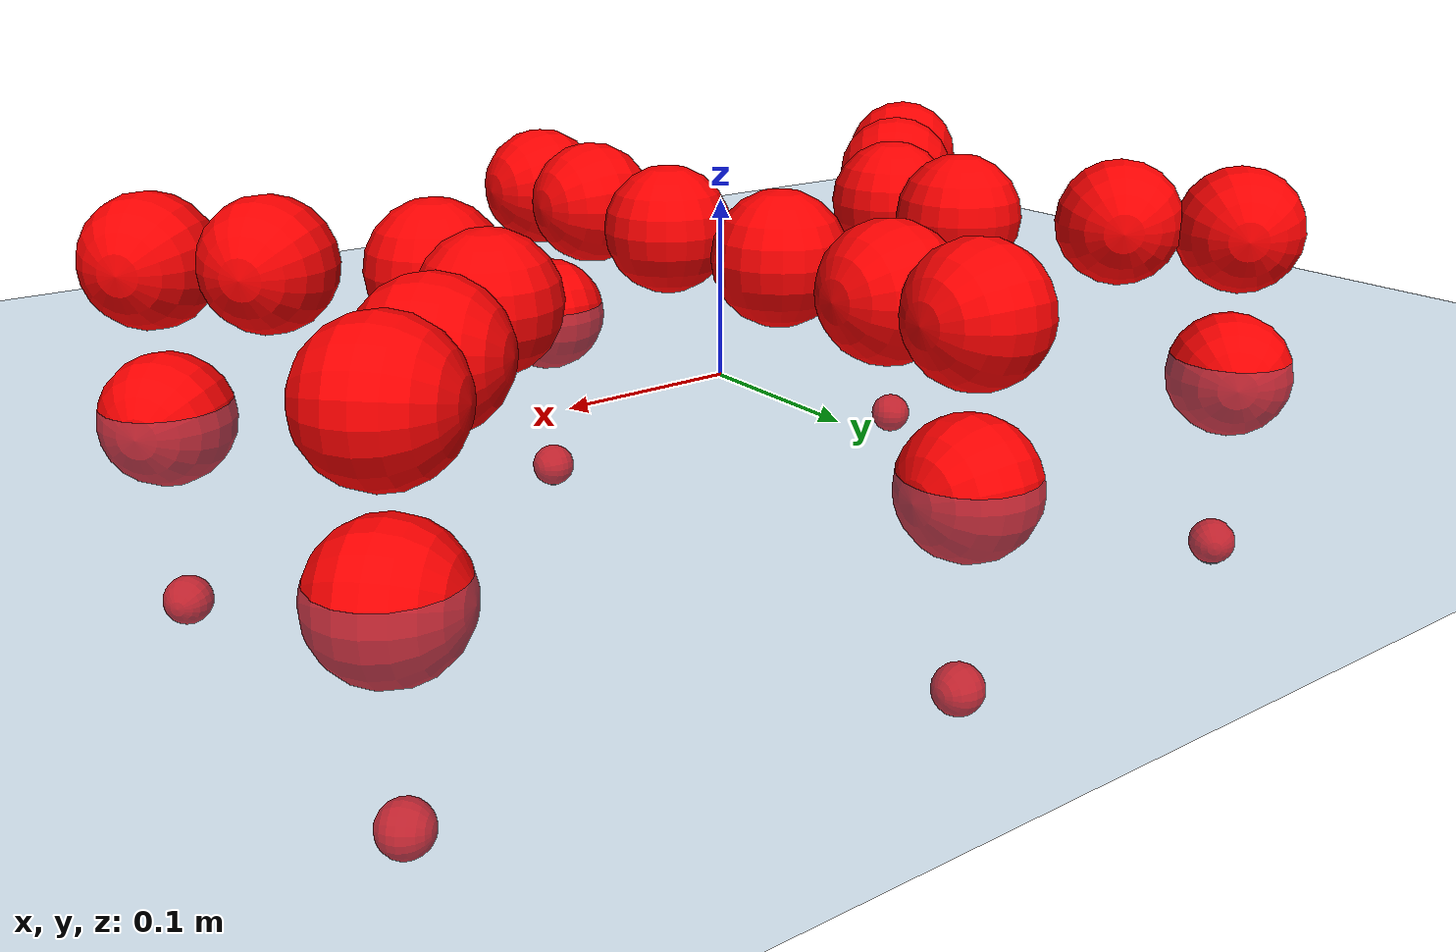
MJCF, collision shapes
<mujoco model="Golem">
  <compiler angle="radian" assetdir="assets" balanceinertia="true" inertiafromgeom="false"/>

  <option timestep="0.005" density="1.2" viscosity="2e-05"/>

  <size nkey="1"/>

  <visual>
    <quality shadowsize="8192"/>
    <map shadowclip="0.5"/>
  </visual>

  <default>
    <default class="/">
      <joint armature="0.01" damping="0.01" frictionloss="0.01"/>
      <geom contype="0" conaffinity="0" group="1" solref="-1000 -80"/>
      <site size="0.01 0.005 0.005" group="5"/>
      <general forcelimited="true" biastype="affine" gainprm="25" biasprm="0 -25 -0.5"/>
      <default class="visual">
        <geom type="mesh" group="2"/>
      </default>
      <default class="collision">
        <geom group="3"/>
      </default>
      <default class="foot">
        <geom size="0.01 0 0" condim="6" group="4" priority="1" solimp="0.015 1 0.01"/>
      </default>
      <default class="reward_collision_sphere">
        <geom group="5" rgba="1 0 0 1"/>
      </default>
    </default>
  </default>

  <asset>
    <texture type="skybox" colorspace="auto" name="//unnamed_texture_0" builtin="gradient" rgb1="0.95 0.95 0.95" rgb2="0.95 0.95 0.95" width="100" height="600"/>
    <texture type="2d" colorspace="auto" name="texplane" builtin="checker" rgb1="0.345 0.575 0.748" rgb2="0.345 0.575 0.748" markrgb="1 1 1" width="512" height="512"/>
    <material name="MatPlane" class="/" texture="texplane" texuniform="true" texrepeat="2 2" specular="0.9"/>
    <mesh name="body" class="/" file="body.stl" scale="0.001 0.001 0.001"/>
    <mesh name="coxa" class="/" file="coxa.stl" scale="0.001 0.001 0.001"/>
    <mesh name="femur" class="/" file="femur.stl" scale="0.001 0.001 0.001"/>
    <mesh name="tibia" class="/" file="tibia.stl" scale="0.001 0.001 0.001"/>
    <mesh name="tarsus" class="/" file="tarsus.stl" scale="0.001 0.001 0.001"/>
  </asset>

  <worldbody>
    <geom name="floor" class="/" size="100 100 0.125" type="plane" group="0" material="MatPlane"/>
    <light name="toplight_shadow" class="/" pos="0 0 5" dir="0.0990148 0.0990148 -0.990148" type="directional" ambient="0.04 0.04 0.04" diffuse="0.55 0.55 0.55" specular="0.12 0.12 0.12"/>
    <light name="toplight_fill" class="/" pos="0 0 5" dir="0.0990148 0.0990148 -0.990148" type="directional" castshadow="false" ambient="0.04 0.04 0.04" diffuse="0.3 0.3 0.3" specular="0.08 0.08 0.08"/>
    <body name="trunk" pos="0.00076841 -0.000904524 0.00105778" quat="1 -0.000330835 0.000180451 -0.000369674">
      <inertial pos="0.00247406 -0.00143529 -0.000926349" quat="0.999995 -0.0026703 0.00148248 0.00081342" mass="2.97235" diaginertia="0.0104105 0.000766452 0.0218588"/>
      <joint name="//unnamed_joint_0" type="free"/>
      <geom name="//unnamed_geom_1" class="/" pos="0 0 0.0740529" quat="1 0 0 0" type="mesh" rgba="0.9 0.9 0.9 1" mesh="body"/>
      <site name="imu" class="/" pos="0.130139 -0.00348167 0.102457" size="0.00915763"/>
      <camera name="track" class="/" pos="0 -1.1904 0" quat="0.707107 0.707107 0 0" mode="trackcom"/>
      <camera name="ego_camera" class="/" pos="0.129352 0 0.115708" quat="-0.5 -0.5 0.5 0.5"/>
      <body name="coxa_RR" pos="-0.175875 -0.0503371 0.075012" quat="0.382577 0.000117461 0.000162745 -0.923924">
        <inertial pos="0.000281563 -0.000683244 0.000941737" quat="1 -0.000313809 0.000492215 -0.000795895" mass="0.1524" diaginertia="0.00967027 0.000735277 0.0204754"/>
        <joint name="coxa_joint_RR" class="/" pos="0 0 0" axis="0.00924953 -0.00261454 -0.999954" range="-3.16694 3.14191" armature="0.00885689" damping="0" frictionloss="0.00914356"/>
        <geom name="//unnamed_geom_2" class="/" type="mesh" rgba="0.2 0.2 0.2 1" mesh="coxa"/>
        <geom name="//unnamed_geom_3" class="reward_collision_sphere" size="0.0366305" pos="-0.0298504 0 0"/>
        <body name="femur_RR" pos="0.0617861 0.0013406 0.00150358" quat="0.499844 -0.500253 0.49978 0.500123">
          <inertial pos="-0.00110859 -0.000312057 -0.000876327" quat="0.999997 -0.000522255 -0.000584776 0.00229727" mass="0.150674" diaginertia="0.00976597 0.000727006 0.0202377"/>
          <joint name="femur_joint_RR" class="/" pos="0 0 0" axis="0.0112343 -0.00831106 -0.999902" range="-3.13758 3.1236" armature="0.00916643" damping="0.00132861" frictionloss="0.00915224"/>
          <geom name="//unnamed_geom_4" class="/" type="mesh" rgba="0.9 0.9 0.9 1" mesh="femur"/>
          <geom name="//unnamed_geom_5" class="reward_collision_sphere" size="0.0366305"/>
          <body name="tibia_RR" pos="-0.00144076 -0.0644626 -0.00166367" quat="-0.000102223 1 -8.39221e-05 4.37851e-05">
            <inertial pos="-0.000321688 -0.00252262 0.000228319" quat="0.99991 -0.00326339 -0.0100406 -0.00822687" mass="0.153626" diaginertia="0.00998345 0.000743103 0.0203271"/>
            <joint name="tibia_joint_RR" class="/" pos="0 0 0" axis="-0.00878981 0.00341392 0.999956" range="-3.10955 3.15981" armature="0.00907266" damping="0.00835729" frictionloss="0.00937284"/>
            <geom name="//unnamed_geom_6" class="/" type="mesh" rgba="0.2 0.2 0.2 1" mesh="tibia"/>
            <geom name="//unnamed_geom_7" class="reward_collision_sphere" size="0.0366305"/>
            <body name="tarsus_RR" pos="0.0864791 -0.00271003 -0.00166575" quat="1 0.000199051 0.000156188 0.000278083">
              <inertial pos="0.0597966 0.000591988 -0.00161816" quat="0.503853 0.492823 0.508474 0.494684" mass="0.158983" diaginertia="0.00995534 0.000760508 0.0202833"/>
              <joint name="tarsus_joint_RR" class="/" pos="0 0 0" axis="-0.00208381 -0.000474167 0.999998" range="-3.16892 3.155" armature="0.0095717" damping="0" frictionloss="0.0101403"/>
              <geom name="//unnamed_geom_8" class="/" type="mesh" rgba="0.9 0.9 0.9 1" mesh="tarsus"/>
              <geom name="foot_1" class="foot" size="0.00927679" pos="0.111441 0 0" quat="0 -0.707107 0 0.707107"/>
              <geom name="//unnamed_geom_10" class="reward_collision_sphere" size="0.0366305"/>
              <geom name="//unnamed_geom_11" class="reward_collision_sphere" size="0.0137364" pos="0.106964 0 0"/>
              <site name="foot_1" class="foot" pos="0.111441 0 0" quat="0 -0.707107 0 0.707107" size="0.00915763"/>
            </body>
          </body>
        </body>
      </body>
      <body name="coxa_RM" pos="-0.0012202 -0.0806962 0.073573" quat="0.706779 0.000342341 0.000986146 -0.707434">
        <inertial pos="0.00196627 0.000369777 -0.0019723" quat="1 -0.000141384 0.000570083 0.000230286" mass="0.155075" diaginertia="0.0097522 0.000766242 0.020592"/>
        <joint name="coxa_joint_RM" class="/" pos="0 0 0" axis="0.00342813 -0.00157284 -0.999993" range="-3.13367 3.14312" armature="0.010044" damping="0.0190837" frictionloss="0.00890806"/>
        <geom name="//unnamed_geom_12" class="/" type="mesh" rgba="0.2 0.2 0.2 1" mesh="coxa"/>
        <geom name="//unnamed_geom_13" class="reward_collision_sphere" size="0.0366305" pos="-0.0298504 0 0"/>
        <body name="femur_RM" pos="0.056255 -0.00301425 0.00142338" quat="0.500228 -0.500403 0.499797 0.499571">
          <inertial pos="0.00261408 -0.00139033 -6.81296e-05" quat="0.999994 0.00314301 -0.0007064 -0.00137436" mass="0.148566" diaginertia="0.00913009 0.000720701 0.0193912"/>
          <joint name="femur_joint_RM" class="/" pos="0 0 0" axis="0.00143827 -0.00813497 -0.999966" range="-3.13357 3.08637" armature="0.00871398" damping="0.0184661" frictionloss="0.00885238"/>
          <geom name="//unnamed_geom_14" class="/" type="mesh" rgba="0.9 0.9 0.9 1" mesh="femur"/>
          <geom name="//unnamed_geom_15" class="reward_collision_sphere" size="0.0366305"/>
          <body name="tibia_RM" pos="-0.000452753 -0.0616219 -0.000969259" quat="-0.00037698 1 -0.000362929 -0.00016947">
            <inertial pos="-0.00120752 0.00281444 0.000212371" quat="0.999986 -0.00252347 -0.00238114 -0.00388897" mass="0.150003" diaginertia="0.00965987 0.00073624 0.0203812"/>
            <joint name="tibia_joint_RM" class="/" pos="0 0 0" axis="-0.000781298 -0.00290442 0.999995" range="-3.1284 3.16459" armature="0.00956507" damping="0.0217359" frictionloss="0.00923514"/>
            <geom name="//unnamed_geom_16" class="/" type="mesh" rgba="0.2 0.2 0.2 1" mesh="tibia"/>
            <geom name="//unnamed_geom_17" class="reward_collision_sphere" size="0.0366305"/>
            <body name="tarsus_RM" pos="0.0848126 -0.00147189 0.000292686" quat="1 8.27724e-06 7.0723e-05 -4.171e-05">
              <inertial pos="0.062159 -4.67768e-05 -0.000667516" quat="0.49764 0.500571 0.501257 0.500524" mass="0.15842" diaginertia="0.00974147 0.00074537 0.0214463"/>
              <joint name="tarsus_joint_RM" class="/" pos="0 0 0" axis="-0.00503786 0.00337622 0.999982" range="-3.18058 3.09217" armature="0.00931698" damping="0.00651803" frictionloss="0.00821474"/>
              <geom name="//unnamed_geom_18" class="/" type="mesh" rgba="0.9 0.9 0.9 1" mesh="tarsus"/>
              <geom name="foot_2" class="foot" size="0.00971461" pos="0.111441 0 0" quat="0 -0.707107 0 0.707107"/>
              <geom name="//unnamed_geom_20" class="reward_collision_sphere" size="0.0366305"/>
              <geom name="//unnamed_geom_21" class="reward_collision_sphere" size="0.0137364" pos="0.106964 0 0"/>
              <site name="foot_2" class="foot" pos="0.111441 0 0" quat="0 -0.707107 0 0.707107" size="0.00915763"/>
            </body>
          </body>
        </body>
      </body>
      <body name="coxa_RF" pos="0.17733 -0.0521477 0.0770423" quat="0.923906 6.72417e-05 6.50781e-05 -0.382619">
        <inertial pos="0.00124171 -0.00268714 0.00224249" quat="0.999914 -0.00544208 -0.00877241 0.00811824" mass="0.146063" diaginertia="0.00959379 0.000730484 0.0203269"/>
        <joint name="coxa_joint_RF" class="/" pos="0 0 0" axis="0.00782512 0.00104602 -0.999969" range="-3.0855 3.14829" armature="0.00808052" damping="0" frictionloss="0.00893942"/>
        <geom name="//unnamed_geom_22" class="/" type="mesh" rgba="0.2 0.2 0.2 1" mesh="coxa"/>
        <geom name="//unnamed_geom_23" class="reward_collision_sphere" size="0.0366305" pos="-0.0298504 0 0"/>
        <body name="femur_RF" pos="0.0599544 -0.000626625 -0.00104714" quat="0.500085 -0.49992 0.500052 0.499944">
          <inertial pos="-0.00180622 0.00249893 0.000515786" quat="0.999989 0.00355985 0.00269292 -0.00168813" mass="0.153546" diaginertia="0.0100563 0.000772325 0.0216613"/>
          <joint name="femur_joint_RF" class="/" pos="0 0 0" axis="-0.000503914 0.000930639 -0.999999" range="-3.14327 3.13221" armature="0.00917826" damping="0.00614022" frictionloss="0.00903257"/>
          <geom name="//unnamed_geom_24" class="/" type="mesh" rgba="0.9 0.9 0.9 1" mesh="femur"/>
          <geom name="//unnamed_geom_25" class="reward_collision_sphere" size="0.0366305"/>
          <body name="tibia_RF" pos="0.000194745 -0.0651369 -0.000345451" quat="0.000158305 1 3.52302e-05 6.01584e-05">
            <inertial pos="-2.86123e-05 -7.73579e-05 -0.00270055" quat="0.999924 0.0113809 0.00100305 0.0046843" mass="0.155389" diaginertia="0.00999452 0.000730906 0.0215462"/>
            <joint name="tibia_joint_RF" class="/" pos="0 0 0" axis="0.00451757 -0.000991761 0.999989" range="-3.14901 3.15163" armature="0.00923795" damping="0.00863604" frictionloss="0.00952948"/>
            <geom name="//unnamed_geom_26" class="/" type="mesh" rgba="0.2 0.2 0.2 1" mesh="tibia"/>
            <geom name="//unnamed_geom_27" class="reward_collision_sphere" size="0.0366305"/>
            <body name="tarsus_RF" pos="0.0872598 -3.95258e-05 8.75203e-05" quat="1 -0.000109643 6.34955e-05 -0.000988464">
              <inertial pos="0.0596268 -0.000839589 -0.000952675" quat="0.498526 0.501884 0.49909 0.500493" mass="0.156283" diaginertia="0.00999793 0.000732631 0.0203164"/>
              <joint name="tarsus_joint_RF" class="/" pos="0 0 0" axis="-0.00295651 0.00357964 0.999989" stiffness="0.0235158" range="-3.09785 3.14288" armature="0.00855615" damping="0" frictionloss="0.00873067"/>
              <geom name="//unnamed_geom_28" class="/" type="mesh" rgba="0.9 0.9 0.9 1" mesh="tarsus"/>
              <geom name="foot_3" class="foot" size="0.00940919" pos="0.111441 0 0" quat="0 -0.707107 0 0.707107"/>
              <geom name="//unnamed_geom_30" class="reward_collision_sphere" size="0.0366305"/>
              <geom name="//unnamed_geom_31" class="reward_collision_sphere" size="0.0137364" pos="0.106964 0 0"/>
              <site name="foot_3" class="foot" pos="0.111441 0 0" quat="0 -0.707107 0 0.707107" size="0.00915763"/>
            </body>
          </body>
        </body>
      </body>
      <body name="coxa_LR" pos="-0.174796 0.051001 0.0754624" quat="0.382565 -0.000273489 3.39673e-05 0.923929">
        <inertial pos="-0.00158946 -0.00250333 -0.000394086" quat="0.99995 -0.00780711 -0.00181307 -0.00604847" mass="0.148471" diaginertia="0.00984199 0.000712903 0.0195922"/>
        <joint name="coxa_joint_LR" class="/" pos="0 0 0" axis="-0.00125358 0.000530727 -0.999999" range="-3.15509 3.14131" armature="0.00905605" damping="0.0199939" frictionloss="0.00936931"/>
        <geom name="//unnamed_geom_32" class="/" type="mesh" rgba="0.2 0.2 0.2 1" mesh="coxa"/>
        <geom name="//unnamed_geom_33" class="reward_collision_sphere" size="0.0366305" pos="-0.0298504 0 0"/>
        <body name="femur_LR" pos="0.0622018 -0.00381105 0.000223056" quat="0.500067 -0.500457 0.499725 0.499751">
          <inertial pos="-0.00032575 -0.00268505 -0.000842179" quat="1 8.93889e-05 -0.000201931 -0.000465794" mass="0.152634" diaginertia="0.00940496 0.000760419 0.0200019"/>
          <joint name="femur_joint_LR" class="/" pos="0 0 0" axis="-0.000246326 -0.000262039 1" range="-3.08904 3.14209" armature="0.00928023" damping="2.99231e-05" frictionloss="0.00911051"/>
          <geom name="//unnamed_geom_34" class="/" type="mesh" rgba="0.9 0.9 0.9 1" mesh="femur"/>
          <geom name="//unnamed_geom_35" class="reward_collision_sphere" size="0.0366305"/>
          <body name="tibia_LR" pos="0.0017292 -0.0674296 -0.00339193" quat="-0.00032693 1 0.000204574 7.57616e-05">
            <inertial pos="0.000724774 -0.00213042 -5.50717e-05" quat="0.999924 -0.00534211 -0.0089103 0.00670701" mass="0.150587" diaginertia="0.0093549 0.000727565 0.0204894"/>
            <joint name="tibia_joint_LR" class="/" pos="0 0 0" axis="8.91981e-05 -0.000317244 -1" range="-3.12523 3.19116" armature="0.0087459" damping="0" frictionloss="0.00911447"/>
            <geom name="//unnamed_geom_36" class="/" type="mesh" rgba="0.2 0.2 0.2 1" mesh="tibia"/>
            <geom name="//unnamed_geom_37" class="reward_collision_sphere" size="0.0366305"/>
            <body name="tarsus_LR" pos="0.0870148 0.00226338 -0.00213491" quat="1 0.000196855 -0.000841719 4.50324e-05">
              <inertial pos="0.0623911 -0.00235634 -0.0023753" quat="0.499576 0.500526 0.500778 0.499119" mass="0.154239" diaginertia="0.00969862 0.000739769 0.0200244"/>
              <joint name="tarsus_joint_LR" class="/" pos="0 0 0" axis="0.0109901 0.0108333 -0.999881" range="-3.13669 3.11766" armature="0.00835254" damping="0" frictionloss="0.0086845"/>
              <geom name="//unnamed_geom_38" class="/" type="mesh" rgba="0.9 0.9 0.9 1" mesh="tarsus"/>
              <geom name="foot_4" class="foot" size="0.0101134" pos="0.111441 0 0" quat="0.707107 0 -0.707107 0"/>
              <geom name="//unnamed_geom_40" class="reward_collision_sphere" size="0.0366305"/>
              <geom name="//unnamed_geom_41" class="reward_collision_sphere" size="0.0137364" pos="0.106964 0 0"/>
              <site name="foot_4" class="foot" pos="0.111441 0 0" quat="0.707107 0 -0.707107 0" size="0.00915763"/>
            </body>
          </body>
        </body>
      </body>
      <body name="coxa_LM" pos="-0.00339196 0.0787326 0.0752277" quat="0.707177 -9.88236e-05 -0.000540975 0.707036">
        <inertial pos="0.00114258 -0.00183146 -0.000167572" quat="0.999922 0.009002 -0.00863901 -6.39203e-07" mass="0.154275" diaginertia="0.00997042 0.000770885 0.021399"/>
        <joint name="coxa_joint_LM" class="/" pos="0 0 0" axis="-0.0131076 0.000495862 -0.999914" range="-3.12744 3.11706" armature="0.00876358" damping="0.00944761" frictionloss="0.00967572"/>
        <geom name="//unnamed_geom_42" class="/" type="mesh" rgba="0.2 0.2 0.2 1" mesh="coxa"/>
        <geom name="//unnamed_geom_43" class="reward_collision_sphere" size="0.0366305" pos="-0.0298504 0 0"/>
        <body name="femur_LM" pos="0.0539704 0.000958463 -0.00116615" quat="0.499722 -0.500108 0.500188 0.499983">
          <inertial pos="0.00163343 0.000572183 0.00101214" quat="0.99995 0.00786915 -0.00246115 0.005605" mass="0.157281" diaginertia="0.009677 0.000791668 0.0215037"/>
          <joint name="femur_joint_LM" class="/" pos="0 0 0" axis="-0.0029903 -0.000605656 0.999995" range="-3.159 3.14153" armature="0.00963244" damping="0.00513055" frictionloss="0.00841016"/>
          <geom name="//unnamed_geom_44" class="/" type="mesh" rgba="0.9 0.9 0.9 1" mesh="femur"/>
          <geom name="//unnamed_geom_45" class="reward_collision_sphere" size="0.0366305"/>
          <body name="tibia_LM" pos="-0.00155797 -0.0593556 0.000826391" quat="0.000930588 0.999999 0.000120151 -0.000473582">
            <inertial pos="0.00112946 0.000475194 -0.00244661" quat="0.999917 0.00938902 0.00493974 -0.00727108" mass="0.154061" diaginertia="0.00977153 0.000778736 0.0211889"/>
            <joint name="tibia_joint_LM" class="/" pos="0 0 0" axis="-0.00526985 -0.00193976 -0.999984" range="-3.13449 3.13818" armature="0.00931609" damping="0" frictionloss="0.00813911"/>
            <geom name="//unnamed_geom_46" class="/" type="mesh" rgba="0.2 0.2 0.2 1" mesh="tibia"/>
            <geom name="//unnamed_geom_47" class="reward_collision_sphere" size="0.0366305"/>
            <body name="tarsus_LM" pos="0.0856424 -0.000215953 -0.000169843" quat="0.999999 0.000636876 -0.000806759 0.000261025">
              <inertial pos="0.0606306 -0.00123914 0.000733643" quat="0.509095 0.497153 0.491485 0.502099" mass="0.158626" diaginertia="0.0100893 0.000752183 0.0207722"/>
              <joint name="tarsus_joint_LM" class="/" pos="0 0 0" axis="0.00047437 -0.0114416 -0.999934" stiffness="0.00475931" range="-3.13912 3.13438" armature="0.00903721" damping="0" frictionloss="0.0103303"/>
              <geom name="//unnamed_geom_48" class="/" type="mesh" rgba="0.9 0.9 0.9 1" mesh="tarsus"/>
              <geom name="foot_5" class="foot" size="0.00913085" pos="0.111441 0 0" quat="0.707107 0 -0.707107 0"/>
              <geom name="//unnamed_geom_50" class="reward_collision_sphere" size="0.0366305"/>
              <geom name="//unnamed_geom_51" class="reward_collision_sphere" size="0.0137364" pos="0.106964 0 0"/>
              <site name="foot_5" class="foot" pos="0.111441 0 0" quat="0.707107 0 -0.707107 0" size="0.00915763"/>
            </body>
          </body>
        </body>
      </body>
      <body name="coxa_LF" pos="0.179487 0.048594 0.0721918" quat="0.92387 -0.000366697 0.000221647 0.382706">
        <inertial pos="-0.000490044 0.00032927 0.00255055" quat="0.999953 0.00796537 0.00156536 -0.00526616" mass="0.150151" diaginertia="0.00937327 0.000766114 0.020229"/>
        <joint name="coxa_joint_LF" class="/" pos="0 0 0" axis="-0.00880062 -0.0126543 -0.999881" range="-3.12319 3.13974" armature="0.0080867" damping="0" frictionloss="0.0103528"/>
        <geom name="//unnamed_geom_52" class="/" type="mesh" rgba="0.2 0.2 0.2 1" mesh="coxa"/>
        <geom name="//unnamed_geom_53" class="reward_collision_sphere" size="0.0366305" pos="-0.0298504 0 0"/>
        <body name="femur_LF" pos="0.0590572 0.000428121 0.000372376" quat="0.500037 -0.500025 0.499811 0.500127">
          <inertial pos="-0.00270588 -0.000313679 0.0025713" quat="0.999999 -0.000711103 -0.000811586 0.000483496" mass="0.154222" diaginertia="0.0101393 0.000748743 0.0207928"/>
          <joint name="femur_joint_LF" class="/" pos="0 0 0" axis="-0.00162271 -0.00199843 0.999997" range="-3.12834 3.12978" armature="0.00970201" damping="0" frictionloss="0.00867041"/>
          <geom name="//unnamed_geom_54" class="/" type="mesh" rgba="0.9 0.9 0.9 1" mesh="femur"/>
          <geom name="//unnamed_geom_55" class="reward_collision_sphere" size="0.0366305"/>
          <body name="tibia_LF" pos="-0.000460606 -0.0636084 8.75753e-05" quat="0.000370268 1 0.000213223 0.000235552">
            <inertial pos="0.0001291 -0.0023874 0.000510609" quat="1 -0.000192302 0.000118022 0.000295445" mass="0.147932" diaginertia="0.00912312 0.000725375 0.0198837"/>
            <joint name="tibia_joint_LF" class="/" pos="0 0 0" axis="-0.00268819 0.00256872 -0.999993" range="-3.14398 3.13166" armature="0.00999444" damping="0" frictionloss="0.00935618"/>
            <geom name="//unnamed_geom_56" class="/" type="mesh" rgba="0.2 0.2 0.2 1" mesh="tibia"/>
            <geom name="//unnamed_geom_57" class="reward_collision_sphere" size="0.0366305"/>
            <body name="tarsus_LF" pos="0.0855273 0.000588579 0.00202472" quat="1 -0.000132814 0.000325548 -8.70171e-05">
              <inertial pos="0.0593722 0.00145605 0.000697114" quat="0.498793 0.495096 0.502395 0.503671" mass="0.144701" diaginertia="0.00937936 0.000702281 0.0200313"/>
              <joint name="tarsus_joint_LF" class="/" pos="0 0 0" axis="-0.000128747 -2.0123e-05 -1" range="-3.15876 3.13518" armature="0.0102345" damping="0.0112061" frictionloss="0.00793566"/>
              <geom name="//unnamed_geom_58" class="/" type="mesh" rgba="0.9 0.9 0.9 1" mesh="tarsus"/>
              <geom name="foot_6" class="foot" size="0.00890626" pos="0.111441 0 0" quat="0.707107 0 -0.707107 0"/>
              <geom name="//unnamed_geom_60" class="reward_collision_sphere" size="0.0366305"/>
              <geom name="//unnamed_geom_61" class="reward_collision_sphere" size="0.0137364" pos="0.106964 0 0"/>
              <site name="foot_6" class="foot" pos="0.111441 0 0" quat="0.707107 0 -0.707107 0" size="0.00915763"/>
            </body>
          </body>
        </body>
      </body>
    </body>
  </worldbody>

  <contact>
    <pair class="/" geom1="floor" geom2="foot_1" name="//unnamed_contact_0"/>
    <pair class="/" geom1="floor" geom2="foot_2" name="//unnamed_contact_1"/>
    <pair class="/" geom1="floor" geom2="foot_3" name="//unnamed_contact_2"/>
    <pair class="/" geom1="floor" geom2="foot_4" name="//unnamed_contact_3"/>
    <pair class="/" geom1="floor" geom2="foot_5" name="//unnamed_contact_4"/>
    <pair class="/" geom1="floor" geom2="foot_6" name="//unnamed_contact_5"/>
  </contact>

  <actuator>
    <general name="coxa_joint_RR" class="/" joint="coxa_joint_RR" forcerange="-6.84286 6.84286" gainprm="23.1817" biasprm="0 -23.1817 -0.486913"/>
    <general name="femur_joint_RR" class="/" joint="femur_joint_RR" forcerange="-6.69053 6.69053" gainprm="23.1817" biasprm="0 -23.1817 -0.486913"/>
    <general name="tibia_joint_RR" class="/" joint="tibia_joint_RR" forcerange="-6.92635 6.92635" gainprm="23.1817" biasprm="0 -23.1817 -0.486913"/>
    <general name="tarsus_joint_RR" class="/" joint="tarsus_joint_RR" forcerange="-7.31601 7.31601" gainprm="23.1817" biasprm="0 -23.1817 -0.486913"/>
    <general name="coxa_joint_RM" class="/" joint="coxa_joint_RM" forcerange="-6.65668 6.65668" gainprm="23.1817" biasprm="0 -23.1817 -0.486913"/>
    <general name="femur_joint_RM" class="/" joint="femur_joint_RM" forcerange="-6.66457 6.66457" gainprm="23.1817" biasprm="0 -23.1817 -0.486913"/>
    <general name="tibia_joint_RM" class="/" joint="tibia_joint_RM" forcerange="-6.61411 6.61411" gainprm="23.1817" biasprm="0 -23.1817 -0.486913"/>
    <general name="tarsus_joint_RM" class="/" joint="tarsus_joint_RM" forcerange="-7.35679 7.35679" gainprm="23.1817" biasprm="0 -23.1817 -0.486913"/>
    <general name="coxa_joint_RF" class="/" joint="coxa_joint_RF" forcerange="-6.8504 6.8504" gainprm="23.1817" biasprm="0 -23.1817 -0.486913"/>
    <general name="femur_joint_RF" class="/" joint="femur_joint_RF" forcerange="-6.02062 6.02062" gainprm="23.1817" biasprm="0 -23.1817 -0.486913"/>
    <general name="tibia_joint_RF" class="/" joint="tibia_joint_RF" forcerange="-7.02694 7.02694" gainprm="23.1817" biasprm="0 -23.1817 -0.486913"/>
    <general name="tarsus_joint_RF" class="/" joint="tarsus_joint_RF" forcerange="-6.27388 6.27388" gainprm="23.1817" biasprm="0 -23.1817 -0.486913"/>
    <general name="coxa_joint_LR" class="/" joint="coxa_joint_LR" forcerange="-6.42904 6.42904" gainprm="23.1817" biasprm="0 -23.1817 -0.486913"/>
    <general name="femur_joint_LR" class="/" joint="femur_joint_LR" forcerange="-6.82492 6.82492" gainprm="23.1817" biasprm="0 -23.1817 -0.486913"/>
    <general name="tibia_joint_LR" class="/" joint="tibia_joint_LR" forcerange="-6.6567 6.6567" gainprm="23.1817" biasprm="0 -23.1817 -0.486913"/>
    <general name="tarsus_joint_LR" class="/" joint="tarsus_joint_LR" forcerange="-6.42031 6.42031" gainprm="23.1817" biasprm="0 -23.1817 -0.486913"/>
    <general name="coxa_joint_LM" class="/" joint="coxa_joint_LM" forcerange="-6.9067 6.9067" gainprm="23.1817" biasprm="0 -23.1817 -0.486913"/>
    <general name="femur_joint_LM" class="/" joint="femur_joint_LM" forcerange="-6.34835 6.34835" gainprm="23.1817" biasprm="0 -23.1817 -0.486913"/>
    <general name="tibia_joint_LM" class="/" joint="tibia_joint_LM" forcerange="-6.79866 6.79866" gainprm="23.1817" biasprm="0 -23.1817 -0.486913"/>
    <general name="tarsus_joint_LM" class="/" joint="tarsus_joint_LM" forcerange="-6.94022 6.94022" gainprm="23.1817" biasprm="0 -23.1817 -0.486913"/>
    <general name="coxa_joint_LF" class="/" joint="coxa_joint_LF" forcerange="-6.06442 6.06442" gainprm="23.1817" biasprm="0 -23.1817 -0.486913"/>
    <general name="femur_joint_LF" class="/" joint="femur_joint_LF" forcerange="-6.42358 6.42358" gainprm="23.1817" biasprm="0 -23.1817 -0.486913"/>
    <general name="tibia_joint_LF" class="/" joint="tibia_joint_LF" forcerange="-6.93655 6.93655" gainprm="23.1817" biasprm="0 -23.1817 -0.486913"/>
    <general name="tarsus_joint_LF" class="/" joint="tarsus_joint_LF" forcerange="-6.8424 6.8424" gainprm="23.1817" biasprm="0 -23.1817 -0.486913"/>
  </actuator>

  <sensor>
    <gyro site="imu" name="imu_angular_velocity"/>
    <velocimeter site="imu" name="imu_linear_velocity"/>
    <framelinvel objtype="site" objname="foot_1" name="foot_1_global_linear_velocity"/>
    <framelinvel objtype="site" objname="foot_2" name="foot_2_global_linear_velocity"/>
    <framelinvel objtype="site" objname="foot_3" name="foot_3_global_linear_velocity"/>
    <framelinvel objtype="site" objname="foot_4" name="foot_4_global_linear_velocity"/>
    <framelinvel objtype="site" objname="foot_5" name="foot_5_global_linear_velocity"/>
    <framelinvel objtype="site" objname="foot_6" name="foot_6_global_linear_velocity"/>
  </sensor>

  <keyframe>
    <key name="home" qpos="0 0 0.1457 1 0 0 0 0 0 0 0 0 0 0 0 0 0 0 0 0 0 0 0 0 0 0 0 0 0 0 0"/>
  </keyframe>
</mujoco>
